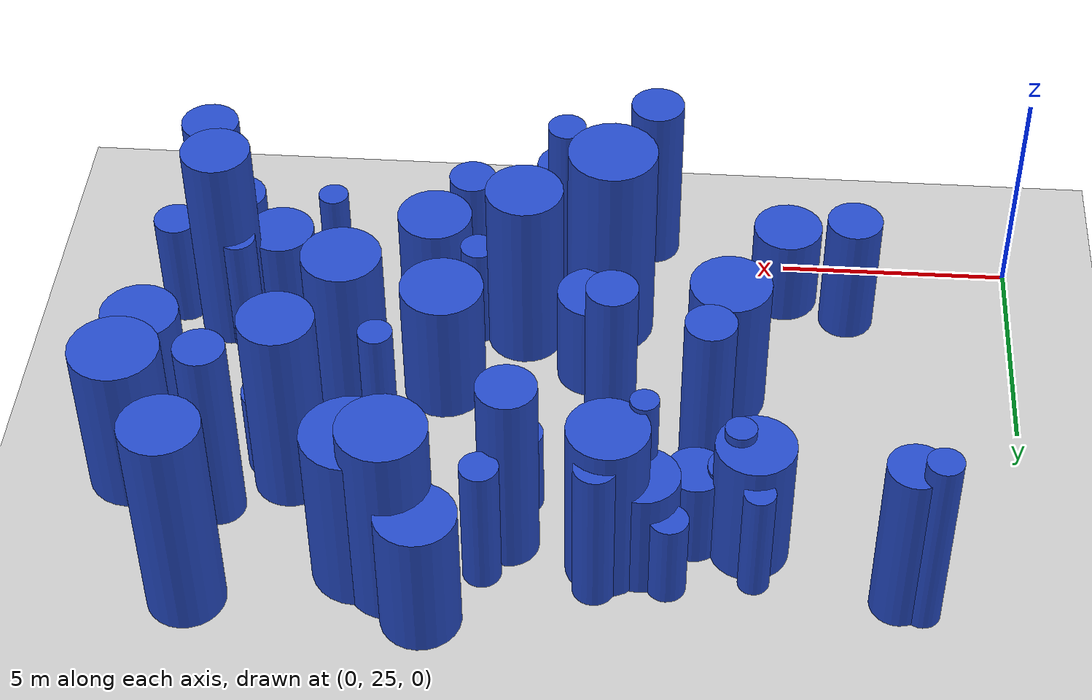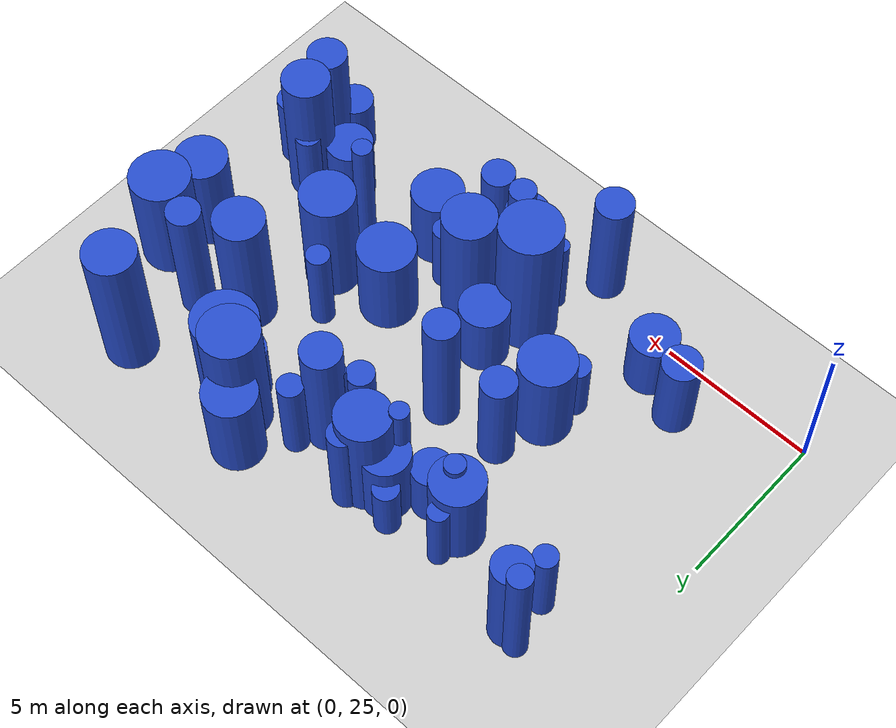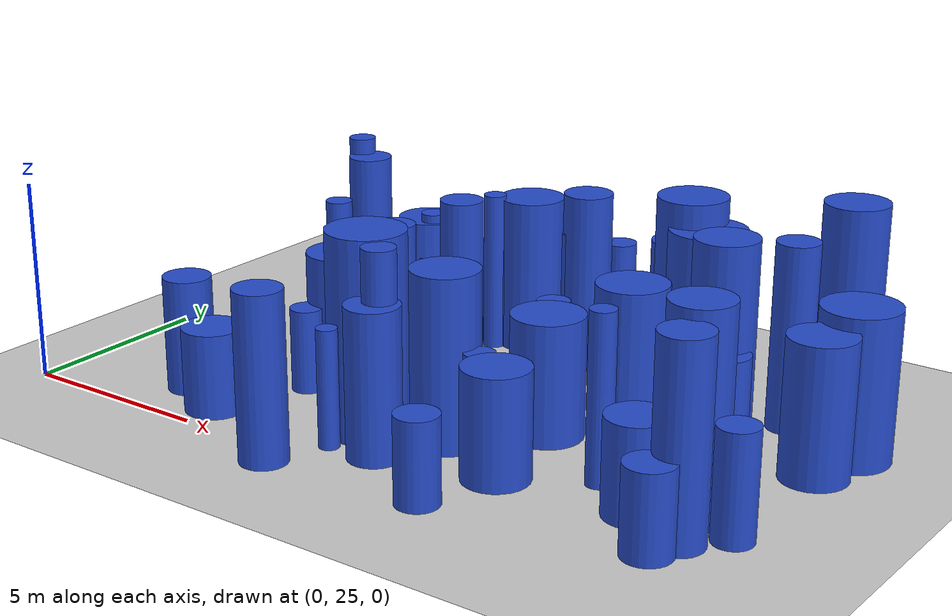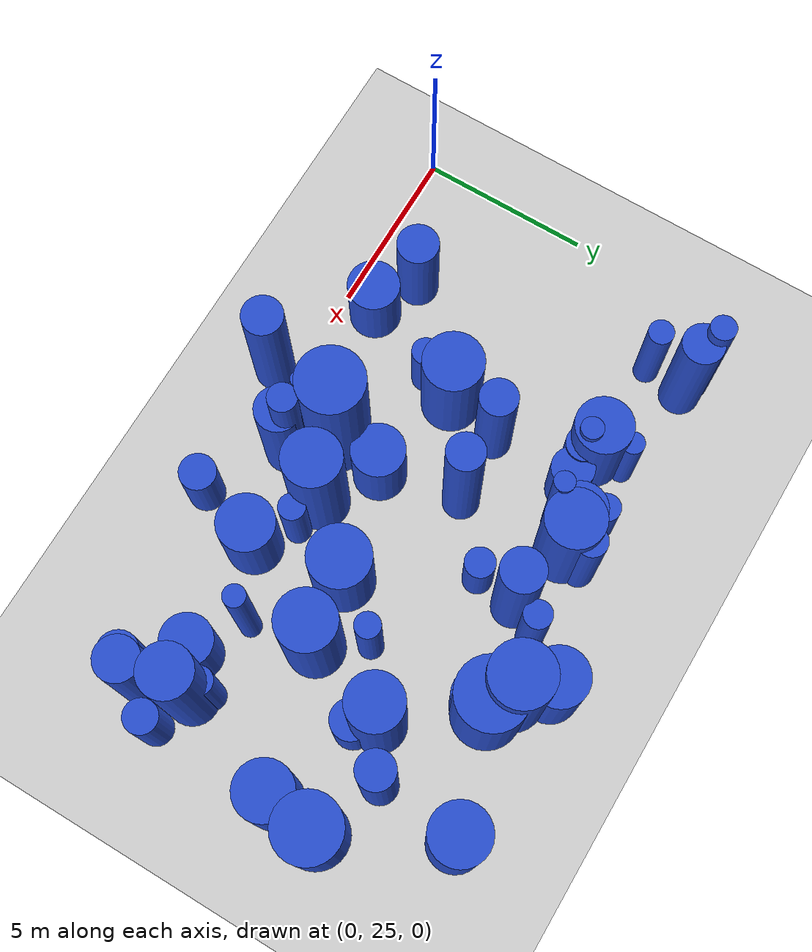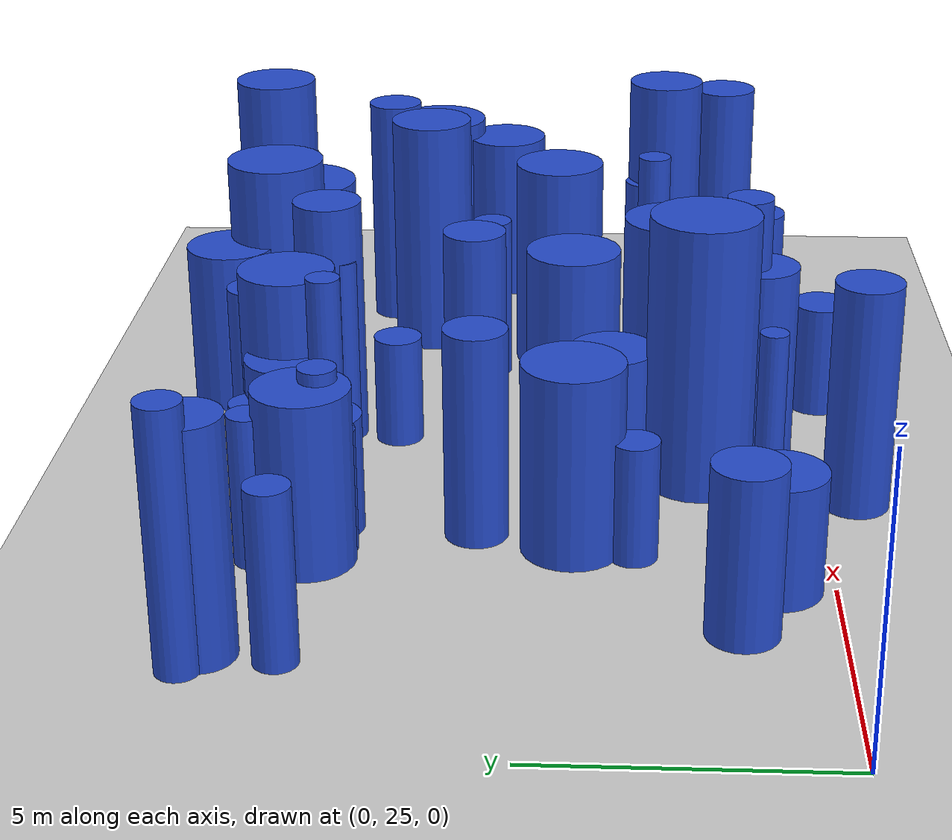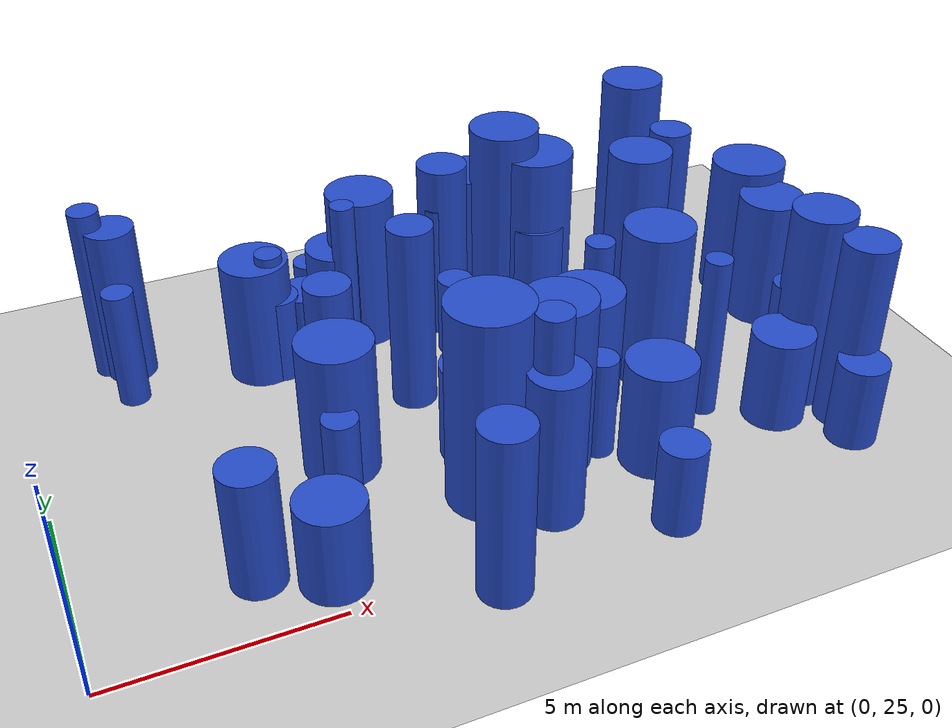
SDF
<sdf version="1.6">
 <world name="default">
  <model name="ground_plane">
   <static>1</static>
   <link name="link">
    <collision name="collision">
     <geometry><plane><normal>0 0 1</normal><size>100 100</size></plane></geometry>
     <surface><friction><ode><mu>100</mu><mu2>50</mu2></ode></friction></surface>
    </collision>
    <visual name="visual">
     <cast_shadows>0</cast_shadows>
     <geometry><plane><normal>0 0 1</normal><size>100 100</size></plane></geometry>
     <material>
      <script><uri>file://media/materials/scripts/gazebo.material</uri><name>Gazebo/Grey</name></script>
     </material>
    </visual>
   </link>
  </model>
  <model name="10">
   <static>0</static>
   <link name="link">
    <inertial>
     <mass>2</mass>
     <inertia>
      <ixx>0.774725</ixx>
      <ixy>0</ixy>
      <ixz>0</ixz>
      <iyy>0.774725</iyy>
      <iyz>0</iyz>
      <izz>0.189763</izz>
     </inertia>
    </inertial>
    <collision name="collision">
     <geometry><cylinder><length>2.01967</length><radius>0.435618</radius></cylinder></geometry>
     <surface><contact><collide_without_contact>1</collide_without_contact></contact></surface>
    </collision>
    <visual name="visual">
     <geometry><cylinder><length>2.01967</length><radius>0.435618</radius></cylinder></geometry>
     <material>
      <script><uri>file://media/materials/scripts/gazebo.material</uri><name>Gazebo/Blue</name></script>
     </material>
    </visual>
    <gravity>0</gravity>
   </link>
   <pose>10.4125 32.5588 1.00983 0 -0 0</pose>
  </model>
  <model name="16">
   <static>0</static>
   <link name="link">
    <inertial>
     <mass>2</mass>
     <inertia>
      <ixx>0.892268</ixx>
      <ixy>0</ixy>
      <ixz>0</ixz>
      <iyy>0.892268</iyy>
      <iyz>0</iyz>
      <izz>0.347311</izz>
     </inertia>
    </inertial>
    <collision name="collision">
     <geometry><cylinder><length>2.07646</length><radius>0.589331</radius></cylinder></geometry>
     <surface><contact><collide_without_contact>1</collide_without_contact></contact></surface>
    </collision>
    <visual name="visual">
     <geometry><cylinder><length>2.07646</length><radius>0.589331</radius></cylinder></geometry>
     <material>
      <script><uri>file://media/materials/scripts/gazebo.material</uri><name>Gazebo/Blue</name></script>
     </material>
    </visual>
    <gravity>0</gravity>
   </link>
   <pose>17.3559 25.5947 1.03823 0 -0 0</pose>
  </model>
  <model name="17">
   <static>0</static>
   <link name="link">
    <inertial>
     <mass>2</mass>
     <inertia><ixx>1.53515</ixx><ixy>0</ixy><ixz>0</ixz><iyy>1.53515</iyy><iyz>0</iyz><izz>0.667989</izz></inertia>
    </inertial>
    <collision name="collision">
     <geometry><cylinder><length>2.68458</length><radius>0.817306</radius></cylinder></geometry>
     <surface><contact><collide_without_contact>1</collide_without_contact></contact></surface>
    </collision>
    <visual name="visual">
     <geometry><cylinder><length>2.68458</length><radius>0.817306</radius></cylinder></geometry>
     <material>
      <script><uri>file://media/materials/scripts/gazebo.material</uri><name>Gazebo/Blue</name></script>
     </material>
    </visual>
    <gravity>0</gravity>
   </link>
   <pose>12.7985 26.728 1.34229 0 -0 0</pose>
  </model>
  <model name="28">
   <static>0</static>
   <link name="link">
    <inertial>
     <mass>2</mass>
     <inertia><ixx>3.02201</ixx><ixy>0</ixy><ixz>0</ixz><iyy>3.02201</iyy><iyz>0</iyz><izz>0.698976</izz></inertia>
    </inertial>
    <collision name="collision">
     <geometry><cylinder><length>4.00439</length><radius>0.836048</radius></cylinder></geometry>
     <surface><contact><collide_without_contact>1</collide_without_contact></contact></surface>
    </collision>
    <visual name="visual">
     <geometry><cylinder><length>4.00439</length><radius>0.836048</radius></cylinder></geometry>
     <material>
      <script><uri>file://media/materials/scripts/gazebo.material</uri><name>Gazebo/Blue</name></script>
     </material>
    </visual>
    <gravity>0</gravity>
   </link>
   <pose>8.59451 34.2473 2.0022 0 -0 0</pose>
  </model>
  <model name="44">
   <static>0</static>
   <link name="link">
    <inertial>
     <mass>2</mass>
     <inertia><ixx>1.89444</ixx><ixy>0</ixy><ixz>0</ixz><iyy>1.89444</iyy><iyz>0</iyz><izz>0.104986</izz></inertia>
    </inertial>
    <collision name="collision">
     <geometry><cylinder><length>3.32441</length><radius>0.324016</radius></cylinder></geometry>
     <surface><contact><collide_without_contact>1</collide_without_contact></contact></surface>
    </collision>
    <visual name="visual">
     <geometry><cylinder><length>3.32441</length><radius>0.324016</radius></cylinder></geometry>
     <material>
      <script><uri>file://media/materials/scripts/gazebo.material</uri><name>Gazebo/Blue</name></script>
     </material>
    </visual>
    <gravity>0</gravity>
   </link>
   <pose>6.01162 33.3985 1.6622 0 -0 0</pose>
  </model>
  <model name="45">
   <static>0</static>
   <link name="link">
    <inertial>
     <mass>2</mass>
     <inertia>
      <ixx>0.842287</ixx>
      <ixy>0</ixy>
      <ixz>0</ixz>
      <iyy>0.842287</iyy>
      <iyz>0</iyz>
      <izz>0.166231</izz>
     </inertia>
    </inertial>
    <collision name="collision">
     <geometry><cylinder><length>2.13425</length><radius>0.407715</radius></cylinder></geometry>
     <surface><contact><collide_without_contact>1</collide_without_contact></contact></surface>
    </collision>
    <visual name="visual">
     <geometry><cylinder><length>2.13425</length><radius>0.407715</radius></cylinder></geometry>
     <material>
      <script><uri>file://media/materials/scripts/gazebo.material</uri><name>Gazebo/Blue</name></script>
     </material>
    </visual>
    <gravity>0</gravity>
   </link>
   <pose>5.99403 28.261 1.06713 0 -0 0</pose>
  </model>
  <model name="46">
   <static>0</static>
   <link name="link">
    <inertial>
     <mass>2</mass>
     <inertia><ixx>3.66514</ixx><ixy>0</ixy><ixz>0</ixz><iyy>3.66514</iyy><iyz>0</iyz><izz>0.277177</izz></inertia>
    </inertial>
    <collision name="collision">
     <geometry><cylinder><length>4.59992</length><radius>0.526476</radius></cylinder></geometry>
     <surface><contact><collide_without_contact>1</collide_without_contact></contact></surface>
    </collision>
    <visual name="visual">
     <geometry><cylinder><length>4.59992</length><radius>0.526476</radius></cylinder></geometry>
     <material>
      <script><uri>file://media/materials/scripts/gazebo.material</uri><name>Gazebo/Blue</name></script>
     </material>
    </visual>
    <gravity>0</gravity>
   </link>
   <pose>16.6724 33.1642 2.29996 0 -0 0</pose>
  </model>
  <model name="59">
   <static>0</static>
   <link name="link">
    <inertial>
     <mass>2</mass>
     <inertia><ixx>3.92698</ixx><ixy>0</ixy><ixz>0</ixz><iyy>3.92698</iyy><iyz>0</iyz><izz>0.61693</izz></inertia>
    </inertial>
    <collision name="collision">
     <geometry><cylinder><length>4.65952</length><radius>0.785449</radius></cylinder></geometry>
     <surface><contact><collide_without_contact>1</collide_without_contact></contact></surface>
    </collision>
    <visual name="visual">
     <geometry><cylinder><length>4.65952</length><radius>0.785449</radius></cylinder></geometry>
     <material>
      <script><uri>file://media/materials/scripts/gazebo.material</uri><name>Gazebo/Blue</name></script>
     </material>
    </visual>
    <gravity>0</gravity>
   </link>
   <pose>15.2975 32.3059 2.32976 0 -0 0</pose>
  </model>
  <model name="60">
   <static>0</static>
   <link name="link">
    <inertial>
     <mass>2</mass>
     <inertia><ixx>1.93141</ixx><ixy>0</ixy><ixz>0</ixz><iyy>1.93141</iyy><iyz>0</iyz><izz>0.684843</izz></inertia>
    </inertial>
    <collision name="collision">
     <geometry><cylinder><length>3.08771</length><radius>0.827552</radius></cylinder></geometry>
     <surface><contact><collide_without_contact>1</collide_without_contact></contact></surface>
    </collision>
    <visual name="visual">
     <geometry><cylinder><length>3.08771</length><radius>0.827552</radius></cylinder></geometry>
     <material>
      <script><uri>file://media/materials/scripts/gazebo.material</uri><name>Gazebo/Blue</name></script>
     </material>
    </visual>
    <gravity>0</gravity>
   </link>
   <pose>12.1888 35.8743 1.54386 0 -0 0</pose>
  </model>
  <model name="84">
   <static>0</static>
   <link name="link">
    <inertial>
     <mass>2</mass>
     <inertia><ixx>2.71071</ixx><ixy>0</ixy><ixz>0</ixz><iyy>2.71071</iyy><iyz>0</iyz><izz>0.884749</izz></inertia>
    </inertial>
    <collision name="collision">
     <geometry><cylinder><length>3.68917</length><radius>0.940611</radius></cylinder></geometry>
     <surface><contact><collide_without_contact>1</collide_without_contact></contact></surface>
    </collision>
    <visual name="visual">
     <geometry><cylinder><length>3.68917</length><radius>0.940611</radius></cylinder></geometry>
     <material>
      <script><uri>file://media/materials/scripts/gazebo.material</uri><name>Gazebo/Blue</name></script>
     </material>
    </visual>
    <gravity>0</gravity>
   </link>
   <pose>18.6467 32.3799 1.84459 0 -0 0</pose>
  </model>
  <model name="85">
   <static>0</static>
   <link name="link">
    <inertial>
     <mass>2</mass>
     <inertia><ixx>1.16177</ixx><ixy>0</ixy><ixz>0</ixz><iyy>1.16177</iyy><iyz>0</iyz><izz>0.543841</izz></inertia>
    </inertial>
    <collision name="collision">
     <geometry><cylinder><length>2.31065</length><radius>0.737455</radius></cylinder></geometry>
     <surface><contact><collide_without_contact>1</collide_without_contact></contact></surface>
    </collision>
    <visual name="visual">
     <geometry><cylinder><length>2.31065</length><radius>0.737455</radius></cylinder></geometry>
     <material>
      <script><uri>file://media/materials/scripts/gazebo.material</uri><name>Gazebo/Blue</name></script>
     </material>
    </visual>
    <gravity>0</gravity>
   </link>
   <pose>16.1913 27.0229 1.15532 0 -0 0</pose>
  </model>
  <model name="88">
   <static>0</static>
   <link name="link">
    <inertial>
     <mass>2</mass>
     <inertia><ixx>2.86237</ixx><ixy>0</ixy><ixz>0</ixz><iyy>2.86237</iyy><iyz>0</iyz><izz>0.098513</izz></inertia>
    </inertial>
    <collision name="collision">
     <geometry><cylinder><length>4.10837</length><radius>0.313868</radius></cylinder></geometry>
     <surface><contact><collide_without_contact>1</collide_without_contact></contact></surface>
    </collision>
    <visual name="visual">
     <geometry><cylinder><length>4.10837</length><radius>0.313868</radius></cylinder></geometry>
     <material>
      <script><uri>file://media/materials/scripts/gazebo.material</uri><name>Gazebo/Blue</name></script>
     </material>
    </visual>
    <gravity>0</gravity>
   </link>
   <pose>14.7797 27.8503 2.05418 0 -0 0</pose>
  </model>
  <model name="89">
   <static>0</static>
   <link name="link">
    <inertial>
     <mass>2</mass>
     <inertia><ixx>4.46549</ixx><ixy>0</ixy><ixz>0</ixz><iyy>4.46549</iyy><iyz>0</iyz><izz>0.649868</izz></inertia>
    </inertial>
    <collision name="collision">
     <geometry><cylinder><length>4.98431</length><radius>0.806144</radius></cylinder></geometry>
     <surface><contact><collide_without_contact>1</collide_without_contact></contact></surface>
    </collision>
    <visual name="visual">
     <geometry><cylinder><length>4.98431</length><radius>0.806144</radius></cylinder></geometry>
     <material>
      <script><uri>file://media/materials/scripts/gazebo.material</uri><name>Gazebo/Blue</name></script>
     </material>
    </visual>
    <gravity>0</gravity>
   </link>
   <pose>16.9416 35.66 2.49215 0 -0 0</pose>
  </model>
  <model name="111">
   <static>0</static>
   <link name="link">
    <inertial>
     <mass>2</mass>
     <inertia><ixx>1.46807</ixx><ixy>0</ixy><ixz>0</ixz><iyy>1.46807</iyy><iyz>0</iyz><izz>0.571442</izz></inertia>
    </inertial>
    <collision name="collision">
     <geometry><cylinder><length>2.66347</length><radius>0.755938</radius></cylinder></geometry>
     <surface><contact><collide_without_contact>1</collide_without_contact></contact></surface>
    </collision>
    <visual name="visual">
     <geometry><cylinder><length>2.66347</length><radius>0.755938</radius></cylinder></geometry>
     <material>
      <script><uri>file://media/materials/scripts/gazebo.material</uri><name>Gazebo/Blue</name></script>
     </material>
    </visual>
    <gravity>0</gravity>
   </link>
   <pose>7.89645 34.1686 1.33174 0 -0 0</pose>
  </model>
  <model name="114">
   <static>0</static>
   <link name="link">
    <inertial>
     <mass>2</mass>
     <inertia><ixx>3.88257</ixx><ixy>0</ixy><ixz>0</ixz><iyy>3.88257</iyy><iyz>0</iyz><izz>0.378975</izz></inertia>
    </inertial>
    <collision name="collision">
     <geometry><cylinder><length>4.70728</length><radius>0.61561</radius></cylinder></geometry>
     <surface><contact><collide_without_contact>1</collide_without_contact></contact></surface>
    </collision>
    <visual name="visual">
     <geometry><cylinder><length>4.70728</length><radius>0.61561</radius></cylinder></geometry>
     <material>
      <script><uri>file://media/materials/scripts/gazebo.material</uri><name>Gazebo/Blue</name></script>
     </material>
    </visual>
    <gravity>0</gravity>
   </link>
   <pose>17.6251 26.3576 2.35364 0 -0 0</pose>
  </model>
  <model name="115">
   <static>0</static>
   <link name="link">
    <inertial>
     <mass>2</mass>
     <inertia><ixx>3.6437</ixx><ixy>0</ixy><ixz>0</ixz><iyy>3.6437</iyy><iyz>0</iyz><izz>0.381318</izz></inertia>
    </inertial>
    <collision name="collision">
     <geometry><cylinder><length>4.55173</length><radius>0.61751</radius></cylinder></geometry>
     <surface><contact><collide_without_contact>1</collide_without_contact></contact></surface>
    </collision>
    <visual name="visual">
     <geometry><cylinder><length>4.55173</length><radius>0.61751</radius></cylinder></geometry>
     <material>
      <script><uri>file://media/materials/scripts/gazebo.material</uri><name>Gazebo/Blue</name></script>
     </material>
    </visual>
    <gravity>0</gravity>
   </link>
   <pose>10.5925 33.7909 2.27586 0 -0 0</pose>
  </model>
  <model name="119">
   <static>0</static>
   <link name="link">
    <inertial>
     <mass>2</mass>
     <inertia><ixx>4.1708</ixx><ixy>0</ixy><ixz>0</ixz><iyy>4.1708</iyy><iyz>0</iyz><izz>0.167894</izz></inertia>
    </inertial>
    <collision name="collision">
     <geometry><cylinder><length>4.95188</length><radius>0.409748</radius></cylinder></geometry>
     <surface><contact><collide_without_contact>1</collide_without_contact></contact></surface>
    </collision>
    <visual name="visual">
     <geometry><cylinder><length>4.95188</length><radius>0.409748</radius></cylinder></geometry>
     <material>
      <script><uri>file://media/materials/scripts/gazebo.material</uri><name>Gazebo/Blue</name></script>
     </material>
    </visual>
    <gravity>0</gravity>
   </link>
   <pose>9.91773 26.2895 2.47594 0 -0 0</pose>
  </model>
  <model name="132">
   <static>0</static>
   <link name="link">
    <inertial>
     <mass>2</mass>
     <inertia><ixx>1.61534</ixx><ixy>0</ixy><ixz>0</ixz><iyy>1.61534</iyy><iyz>0</iyz><izz>0.365131</izz></inertia>
    </inertial>
    <collision name="collision">
     <geometry><cylinder><length>2.93201</length><radius>0.604261</radius></cylinder></geometry>
     <surface><contact><collide_without_contact>1</collide_without_contact></contact></surface>
    </collision>
    <visual name="visual">
     <geometry><cylinder><length>2.93201</length><radius>0.604261</radius></cylinder></geometry>
     <material>
      <script><uri>file://media/materials/scripts/gazebo.material</uri><name>Gazebo/Blue</name></script>
     </material>
    </visual>
    <gravity>0</gravity>
   </link>
   <pose>3.6225 26.5939 1.466 0 -0 0</pose>
  </model>
  <model name="163">
   <static>0</static>
   <link name="link">
    <inertial>
     <mass>2</mass>
     <inertia>
      <ixx>0.925012</ixx>
      <ixy>0</ixy>
      <ixz>0</ixz>
      <iyy>0.925012</iyy>
      <iyz>0</iyz>
      <izz>0.377759</izz>
     </inertia>
    </inertial>
    <collision name="collision">
     <geometry><cylinder><length>2.10162</length><radius>0.614621</radius></cylinder></geometry>
     <surface><contact><collide_without_contact>1</collide_without_contact></contact></surface>
    </collision>
    <visual name="visual">
     <geometry><cylinder><length>2.10162</length><radius>0.614621</radius></cylinder></geometry>
     <material>
      <script><uri>file://media/materials/scripts/gazebo.material</uri><name>Gazebo/Blue</name></script>
     </material>
    </visual>
    <gravity>0</gravity>
   </link>
   <pose>6.85279 33.4181 1.05081 0 -0 0</pose>
  </model>
  <model name="164">
   <static>0</static>
   <link name="link">
    <inertial>
     <mass>2</mass>
     <inertia>
      <ixx>1.45372</ixx>
      <ixy>0</ixy>
      <ixz>0</ixz>
      <iyy>1.45372</iyy>
      <iyz>0</iyz>
      <izz>0.0647348</izz>
     </inertia>
    </inertial>
    <collision name="collision">
     <geometry><cylinder><length>2.92029</length><radius>0.25443</radius></cylinder></geometry>
     <surface><contact><collide_without_contact>1</collide_without_contact></contact></surface>
    </collision>
    <visual name="visual">
     <geometry><cylinder><length>2.92029</length><radius>0.25443</radius></cylinder></geometry>
     <material>
      <script><uri>file://media/materials/scripts/gazebo.material</uri><name>Gazebo/Blue</name></script>
     </material>
    </visual>
    <gravity>0</gravity>
   </link>
   <pose>8.71199 25.8672 1.46014 0 -0 0</pose>
  </model>
  <model name="186">
   <static>0</static>
   <link name="link">
    <inertial>
     <mass>2</mass>
     <inertia><ixx>1.45752</ixx><ixy>0</ixy><ixz>0</ixz><iyy>1.45752</iyy><iyz>0</iyz><izz>0.163169</izz></inertia>
    </inertial>
    <collision name="collision">
     <geometry><cylinder><length>2.87326</length><radius>0.403942</radius></cylinder></geometry>
     <surface><contact><collide_without_contact>1</collide_without_contact></contact></surface>
    </collision>
    <visual name="visual">
     <geometry><cylinder><length>2.87326</length><radius>0.403942</radius></cylinder></geometry>
     <material>
      <script><uri>file://media/materials/scripts/gazebo.material</uri><name>Gazebo/Blue</name></script>
     </material>
    </visual>
    <gravity>0</gravity>
   </link>
   <pose>16.9574 27.9873 1.43663 0 -0 0</pose>
  </model>
  <model name="198">
   <static>0</static>
   <link name="link">
    <inertial>
     <mass>2</mass>
     <inertia><ixx>1.55105</ixx><ixy>0</ixy><ixz>0</ixz><iyy>1.55105</iyy><iyz>0</iyz><izz>0.133305</izz></inertia>
    </inertial>
    <collision name="collision">
     <geometry><cylinder><length>2.98436</length><radius>0.36511</radius></cylinder></geometry>
     <surface><contact><collide_without_contact>1</collide_without_contact></contact></surface>
    </collision>
    <visual name="visual">
     <geometry><cylinder><length>2.98436</length><radius>0.36511</radius></cylinder></geometry>
     <material>
      <script><uri>file://media/materials/scripts/gazebo.material</uri><name>Gazebo/Blue</name></script>
     </material>
    </visual>
    <gravity>0</gravity>
   </link>
   <pose>2.51742 33.665 1.49218 0 -0 0</pose>
  </model>
  <model name="209">
   <static>0</static>
   <link name="link">
    <inertial>
     <mass>2</mass>
     <inertia>
      <ixx>0.868833</ixx>
      <ixy>0</ixy>
      <ixz>0</ixz>
      <iyy>0.868833</iyy>
      <iyz>0</iyz>
      <izz>0.327499</izz>
     </inertia>
    </inertial>
    <collision name="collision">
     <geometry><cylinder><length>2.05682</length><radius>0.572276</radius></cylinder></geometry>
     <surface><contact><collide_without_contact>1</collide_without_contact></contact></surface>
    </collision>
    <visual name="visual">
     <geometry><cylinder><length>2.05682</length><radius>0.572276</radius></cylinder></geometry>
     <material>
      <script><uri>file://media/materials/scripts/gazebo.material</uri><name>Gazebo/Blue</name></script>
     </material>
    </visual>
    <gravity>0</gravity>
   </link>
   <pose>15.7369 31.7663 1.02841 0 -0 0</pose>
  </model>
  <model name="213">
   <static>0</static>
   <link name="link">
    <inertial>
     <mass>2</mass>
     <inertia><ixx>3.3631</ixx><ixy>0</ixy><ixz>0</ixz><iyy>3.3631</iyy><iyz>0</iyz><izz>0.133326</izz></inertia>
    </inertial>
    <collision name="collision">
     <geometry><cylinder><length>4.44731</length><radius>0.365139</radius></cylinder></geometry>
     <surface><contact><collide_without_contact>1</collide_without_contact></contact></surface>
    </collision>
    <visual name="visual">
     <geometry><cylinder><length>4.44731</length><radius>0.365139</radius></cylinder></geometry>
     <material>
      <script><uri>file://media/materials/scripts/gazebo.material</uri><name>Gazebo/Blue</name></script>
     </material>
    </visual>
    <gravity>0</gravity>
   </link>
   <pose>2.21908 35.095 2.22366 0 -0 0</pose>
  </model>
  <model name="220">
   <static>0</static>
   <link name="link">
    <inertial>
     <mass>2</mass>
     <inertia><ixx>1.72789</ixx><ixy>0</ixy><ixz>0</ixz><iyy>1.72789</iyy><iyz>0</iyz><izz>0.15882</izz></inertia>
    </inertial>
    <collision name="collision">
     <geometry><cylinder><length>3.14497</length><radius>0.398523</radius></cylinder></geometry>
     <surface><contact><collide_without_contact>1</collide_without_contact></contact></surface>
    </collision>
    <visual name="visual">
     <geometry><cylinder><length>3.14497</length><radius>0.398523</radius></cylinder></geometry>
     <material>
      <script><uri>file://media/materials/scripts/gazebo.material</uri><name>Gazebo/Blue</name></script>
     </material>
    </visual>
    <gravity>0</gravity>
   </link>
   <pose>11.0817 34.6108 1.57249 0 -0 0</pose>
  </model>
  <model name="224">
   <static>0</static>
   <link name="link">
    <inertial>
     <mass>2</mass>
     <inertia>
      <ixx>0.99293</ixx>
      <ixy>0</ixy>
      <ixz>0</ixz>
      <iyy>0.99293</iyy>
      <iyz>0</iyz>
      <izz>0.0959306</izz>
     </inertia>
    </inertial>
    <collision name="collision">
     <geometry><cylinder><length>2.38113</length><radius>0.309727</radius></cylinder></geometry>
     <surface><contact><collide_without_contact>1</collide_without_contact></contact></surface>
    </collision>
    <visual name="visual">
     <geometry><cylinder><length>2.38113</length><radius>0.309727</radius></cylinder></geometry>
     <material>
      <script><uri>file://media/materials/scripts/gazebo.material</uri><name>Gazebo/Blue</name></script>
     </material>
    </visual>
    <gravity>0</gravity>
   </link>
   <pose>8.02064 24.4742 1.19057 0 -0 0</pose>
  </model>
  <model name="232">
   <static>0</static>
   <link name="link">
    <inertial>
     <mass>2</mass>
     <inertia><ixx>1.25471</ixx><ixy>0</ixy><ixz>0</ixz><iyy>1.25471</iyy><iyz>0</iyz><izz>0.231421</izz></inertia>
    </inertial>
    <collision name="collision">
     <geometry><cylinder><length>2.61419</length><radius>0.481063</radius></cylinder></geometry>
     <surface><contact><collide_without_contact>1</collide_without_contact></contact></surface>
    </collision>
    <visual name="visual">
     <geometry><cylinder><length>2.61419</length><radius>0.481063</radius></cylinder></geometry>
     <material>
      <script><uri>file://media/materials/scripts/gazebo.material</uri><name>Gazebo/Blue</name></script>
     </material>
    </visual>
    <gravity>0</gravity>
   </link>
   <pose>18.4605 27.1727 1.3071 0 -0 0</pose>
  </model>
  <model name="241">
   <static>0</static>
   <link name="link">
    <inertial>
     <mass>2</mass>
     <inertia><ixx>2.50437</ixx><ixy>0</ixy><ixz>0</ixz><iyy>2.50437</iyy><iyz>0</iyz><izz>0.295767</izz></inertia>
    </inertial>
    <collision name="collision">
     <geometry><cylinder><length>3.76017</length><radius>0.543845</radius></cylinder></geometry>
     <surface><contact><collide_without_contact>1</collide_without_contact></contact></surface>
    </collision>
    <visual name="visual">
     <geometry><cylinder><length>3.76017</length><radius>0.543845</radius></cylinder></geometry>
     <material>
      <script><uri>file://media/materials/scripts/gazebo.material</uri><name>Gazebo/Blue</name></script>
     </material>
    </visual>
    <gravity>0</gravity>
   </link>
   <pose>6.67994 30.8942 1.88009 0 -0 0</pose>
  </model>
  <model name="245">
   <static>0</static>
   <link name="link">
    <inertial>
     <mass>2</mass>
     <inertia><ixx>3.09479</ixx><ixy>0</ixy><ixz>0</ixz><iyy>3.09479</iyy><iyz>0</iyz><izz>0.995737</izz></inertia>
    </inertial>
    <collision name="collision">
     <geometry><cylinder><length>3.94735</length><radius>0.997866</radius></cylinder></geometry>
     <surface><contact><collide_without_contact>1</collide_without_contact></contact></surface>
    </collision>
    <visual name="visual">
     <geometry><cylinder><length>3.94735</length><radius>0.997866</radius></cylinder></geometry>
     <material>
      <script><uri>file://media/materials/scripts/gazebo.material</uri><name>Gazebo/Blue</name></script>
     </material>
    </visual>
    <gravity>0</gravity>
   </link>
   <pose>13.551 34.6415 1.97367 0 -0 0</pose>
  </model>
  <model name="253">
   <static>0</static>
   <link name="link">
    <inertial>
     <mass>2</mass>
     <inertia><ixx>1.94277</ixx><ixy>0</ixy><ixz>0</ixz><iyy>1.94277</iyy><iyz>0</iyz><izz>0.672323</izz></inertia>
    </inertial>
    <collision name="collision">
     <geometry><cylinder><length>3.10478</length><radius>0.819953</radius></cylinder></geometry>
     <surface><contact><collide_without_contact>1</collide_without_contact></contact></surface>
    </collision>
    <visual name="visual">
     <geometry><cylinder><length>3.10478</length><radius>0.819953</radius></cylinder></geometry>
     <material>
      <script><uri>file://media/materials/scripts/gazebo.material</uri><name>Gazebo/Blue</name></script>
     </material>
    </visual>
    <gravity>0</gravity>
   </link>
   <pose>5.70056 33.6282 1.55239 0 -0 0</pose>
  </model>
  <model name="293">
   <static>0</static>
   <link name="link">
    <inertial>
     <mass>2</mass>
     <inertia><ixx>2.23456</ixx><ixy>0</ixy><ixz>0</ixz><iyy>2.23456</iyy><iyz>0</iyz><izz>0.19613</izz></inertia>
    </inertial>
    <collision name="collision">
     <geometry><cylinder><length>3.58036</length><radius>0.442865</radius></cylinder></geometry>
     <surface><contact><collide_without_contact>1</collide_without_contact></contact></surface>
    </collision>
    <visual name="visual">
     <geometry><cylinder><length>3.58036</length><radius>0.442865</radius></cylinder></geometry>
     <material>
      <script><uri>file://media/materials/scripts/gazebo.material</uri><name>Gazebo/Blue</name></script>
     </material>
    </visual>
    <gravity>0</gravity>
   </link>
   <pose>8.79822 34.8797 1.79018 0 -0 0</pose>
  </model>
  <model name="295">
   <static>0</static>
   <link name="link">
    <inertial>
     <mass>2</mass>
     <inertia><ixx>3.90292</ixx><ixy>0</ixy><ixz>0</ixz><iyy>3.90292</iyy><iyz>0</iyz><izz>0.818913</izz></inertia>
    </inertial>
    <collision name="collision">
     <geometry><cylinder><length>4.57829</length><radius>0.904938</radius></cylinder></geometry>
     <surface><contact><collide_without_contact>1</collide_without_contact></contact></surface>
    </collision>
    <visual name="visual">
     <geometry><cylinder><length>4.57829</length><radius>0.904938</radius></cylinder></geometry>
     <material>
      <script><uri>file://media/materials/scripts/gazebo.material</uri><name>Gazebo/Blue</name></script>
     </material>
    </visual>
    <gravity>0</gravity>
   </link>
   <pose>12.8573 35.0631 2.28915 0 -0 0</pose>
  </model>
  <model name="304">
   <static>0</static>
   <link name="link">
    <inertial>
     <mass>2</mass>
     <inertia><ixx>1.92398</ixx><ixy>0</ixy><ixz>0</ixz><iyy>1.92398</iyy><iyz>0</iyz><izz>0.799679</izz></inertia>
    </inertial>
    <collision name="collision">
     <geometry><cylinder><length>3.02404</length><radius>0.894248</radius></cylinder></geometry>
     <surface><contact><collide_without_contact>1</collide_without_contact></contact></surface>
    </collision>
    <visual name="visual">
     <geometry><cylinder><length>3.02404</length><radius>0.894248</radius></cylinder></geometry>
     <material>
      <script><uri>file://media/materials/scripts/gazebo.material</uri><name>Gazebo/Blue</name></script>
     </material>
    </visual>
    <gravity>0</gravity>
   </link>
   <pose>12.363 29.3953 1.51202 0 -0 0</pose>
  </model>
  <model name="311">
   <static>0</static>
   <link name="link">
    <inertial>
     <mass>2</mass>
     <inertia><ixx>2.86992</ixx><ixy>0</ixy><ixz>0</ixz><iyy>2.86992</iyy><iyz>0</iyz><izz>0.350057</izz></inertia>
    </inertial>
    <collision name="collision">
     <geometry><cylinder><length>4.02111</length><radius>0.591656</radius></cylinder></geometry>
     <surface><contact><collide_without_contact>1</collide_without_contact></contact></surface>
    </collision>
    <visual name="visual">
     <geometry><cylinder><length>4.02111</length><radius>0.591656</radius></cylinder></geometry>
     <material>
      <script><uri>file://media/materials/scripts/gazebo.material</uri><name>Gazebo/Blue</name></script>
     </material>
    </visual>
    <gravity>0</gravity>
   </link>
   <pose>2.69242 34.8475 2.01056 0 -0 0</pose>
  </model>
  <model name="323">
   <static>0</static>
   <link name="link">
    <inertial>
     <mass>2</mass>
     <inertia>
      <ixx>3.12147</ixx>
      <ixy>0</ixy>
      <ixz>0</ixz>
      <iyy>3.12147</iyy>
      <iyz>0</iyz>
      <izz>0.0769715</izz>
     </inertia>
    </inertial>
    <collision name="collision">
     <geometry><cylinder><length>4.30092</length><radius>0.277437</radius></cylinder></geometry>
     <surface><contact><collide_without_contact>1</collide_without_contact></contact></surface>
    </collision>
    <visual name="visual">
     <geometry><cylinder><length>4.30092</length><radius>0.277437</radius></cylinder></geometry>
     <material>
      <script><uri>file://media/materials/scripts/gazebo.material</uri><name>Gazebo/Blue</name></script>
     </material>
    </visual>
    <gravity>0</gravity>
   </link>
   <pose>12.4292 34.6432 2.15046 0 -0 0</pose>
  </model>
  <model name="328">
   <static>0</static>
   <link name="link">
    <inertial>
     <mass>2</mass>
     <inertia><ixx>2.23108</ixx><ixy>0</ixy><ixz>0</ixz><iyy>2.23108</iyy><iyz>0</iyz><izz>0.666087</izz></inertia>
    </inertial>
    <collision name="collision">
     <geometry><cylinder><length>3.37464</length><radius>0.816142</radius></cylinder></geometry>
     <surface><contact><collide_without_contact>1</collide_without_contact></contact></surface>
    </collision>
    <visual name="visual">
     <geometry><cylinder><length>3.37464</length><radius>0.816142</radius></cylinder></geometry>
     <material>
      <script><uri>file://media/materials/scripts/gazebo.material</uri><name>Gazebo/Blue</name></script>
     </material>
    </visual>
    <gravity>0</gravity>
   </link>
   <pose>18.4338 30.9563 1.68732 0 -0 0</pose>
  </model>
  <model name="363">
   <static>0</static>
   <link name="link">
    <inertial>
     <mass>2</mass>
     <inertia><ixx>3.14608</ixx><ixy>0</ixy><ixz>0</ixz><iyy>3.14608</iyy><iyz>0</iyz><izz>0.719599</izz></inertia>
    </inertial>
    <collision name="collision">
     <geometry><cylinder><length>4.08873</length><radius>0.848292</radius></cylinder></geometry>
     <surface><contact><collide_without_contact>1</collide_without_contact></contact></surface>
    </collision>
    <visual name="visual">
     <geometry><cylinder><length>4.08873</length><radius>0.848292</radius></cylinder></geometry>
     <material>
      <script><uri>file://media/materials/scripts/gazebo.material</uri><name>Gazebo/Blue</name></script>
     </material>
    </visual>
    <gravity>0</gravity>
   </link>
   <pose>14.3779 29.7137 2.04436 0 -0 0</pose>
  </model>
  <model name="369">
   <static>0</static>
   <link name="link">
    <inertial>
     <mass>2</mass>
     <inertia>
      <ixx>2.86665</ixx>
      <ixy>0</ixy>
      <ixz>0</ixz>
      <iyy>2.86665</iyy>
      <iyz>0</iyz>
      <izz>0.0865546</izz>
     </inertia>
    </inertial>
    <collision name="collision">
     <geometry><cylinder><length>4.11585</length><radius>0.294202</radius></cylinder></geometry>
     <surface><contact><collide_without_contact>1</collide_without_contact></contact></surface>
    </collision>
    <visual name="visual">
     <geometry><cylinder><length>4.11585</length><radius>0.294202</radius></cylinder></geometry>
     <material>
      <script><uri>file://media/materials/scripts/gazebo.material</uri><name>Gazebo/Blue</name></script>
     </material>
    </visual>
    <gravity>0</gravity>
   </link>
   <pose>7.92364 33.5296 2.05793 0 -0 0</pose>
  </model>
  <model name="378">
   <static>0</static>
   <link name="link">
    <inertial>
     <mass>2</mass>
     <inertia>
      <ixx>0.884263</ixx>
      <ixy>0</ixy>
      <ixz>0</ixz>
      <iyy>0.884263</iyy>
      <iyz>0</iyz>
      <izz>0.279062</izz>
     </inertia>
    </inertial>
    <collision name="collision">
     <geometry><cylinder><length>2.11386</length><radius>0.528263</radius></cylinder></geometry>
     <surface><contact><collide_without_contact>1</collide_without_contact></contact></surface>
    </collision>
    <visual name="visual">
     <geometry><cylinder><length>2.11386</length><radius>0.528263</radius></cylinder></geometry>
     <material>
      <script><uri>file://media/materials/scripts/gazebo.material</uri><name>Gazebo/Blue</name></script>
     </material>
    </visual>
    <gravity>0</gravity>
   </link>
   <pose>12.1719 24.7098 1.05693 0 -0 0</pose>
  </model>
  <model name="397">
   <static>0</static>
   <link name="link">
    <inertial>
     <mass>2</mass>
     <inertia>
      <ixx>2.10816</ixx>
      <ixy>0</ixy>
      <ixz>0</ixz>
      <iyy>2.10816</iyy>
      <iyz>0</iyz>
      <izz>0.0886619</izz>
     </inertia>
    </inertial>
    <collision name="collision">
     <geometry><cylinder><length>3.51895</length><radius>0.297761</radius></cylinder></geometry>
     <surface><contact><collide_without_contact>1</collide_without_contact></contact></surface>
    </collision>
    <visual name="visual">
     <geometry><cylinder><length>3.51895</length><radius>0.297761</radius></cylinder></geometry>
     <material>
      <script><uri>file://media/materials/scripts/gazebo.material</uri><name>Gazebo/Blue</name></script>
     </material>
    </visual>
    <gravity>0</gravity>
   </link>
   <pose>10.3334 33.5494 1.75947 0 -0 0</pose>
  </model>
  <model name="403">
   <static>0</static>
   <link name="link">
    <inertial>
     <mass>2</mass>
     <inertia><ixx>4.59726</ixx><ixy>0</ixy><ixz>0</ixz><iyy>4.59726</iyy><iyz>0</iyz><izz>0.922109</izz></inertia>
    </inertial>
    <collision name="collision">
     <geometry><cylinder><length>4.98169</length><radius>0.960265</radius></cylinder></geometry>
     <surface><contact><collide_without_contact>1</collide_without_contact></contact></surface>
    </collision>
    <visual name="visual">
     <geometry><cylinder><length>4.98169</length><radius>0.960265</radius></cylinder></geometry>
     <material>
      <script><uri>file://media/materials/scripts/gazebo.material</uri><name>Gazebo/Blue</name></script>
     </material>
    </visual>
    <gravity>0</gravity>
   </link>
   <pose>8.89273 27.0991 2.49084 0 -0 0</pose>
  </model>
  <model name="411">
   <static>0</static>
   <link name="link">
    <inertial>
     <mass>2</mass>
     <inertia><ixx>4.35155</ixx><ixy>0</ixy><ixz>0</ixz><iyy>4.35155</iyy><iyz>0</iyz><izz>0.550593</izz></inertia>
    </inertial>
    <collision name="collision">
     <geometry><cylinder><length>4.94546</length><radius>0.742019</radius></cylinder></geometry>
     <surface><contact><collide_without_contact>1</collide_without_contact></contact></surface>
    </collision>
    <visual name="visual">
     <geometry><cylinder><length>4.94546</length><radius>0.742019</radius></cylinder></geometry>
     <material>
      <script><uri>file://media/materials/scripts/gazebo.material</uri><name>Gazebo/Blue</name></script>
     </material>
    </visual>
    <gravity>0</gravity>
   </link>
   <pose>17.2838 27.5865 2.47273 0 -0 0</pose>
  </model>
  <model name="420">
   <static>0</static>
   <link name="link">
    <inertial>
     <mass>2</mass>
     <inertia><ixx>3.82804</ixx><ixy>0</ixy><ixz>0</ixz><iyy>3.82804</iyy><iyz>0</iyz><izz>0.287428</izz></inertia>
    </inertial>
    <collision name="collision">
     <geometry><cylinder><length>4.7017</length><radius>0.536123</radius></cylinder></geometry>
     <surface><contact><collide_without_contact>1</collide_without_contact></contact></surface>
    </collision>
    <visual name="visual">
     <geometry><cylinder><length>4.7017</length><radius>0.536123</radius></cylinder></geometry>
     <material>
      <script><uri>file://media/materials/scripts/gazebo.material</uri><name>Gazebo/Blue</name></script>
     </material>
    </visual>
    <gravity>0</gravity>
   </link>
   <pose>8.69771 31.0233 2.35085 0 -0 0</pose>
  </model>
  <model name="422">
   <static>0</static>
   <link name="link">
    <inertial>
     <mass>2</mass>
     <inertia><ixx>3.38655</ixx><ixy>0</ixy><ixz>0</ixz><iyy>3.38655</iyy><iyz>0</iyz><izz>0.69633</izz></inertia>
    </inertial>
    <collision name="collision">
     <geometry><cylinder><length>4.26969</length><radius>0.834464</radius></cylinder></geometry>
     <surface><contact><collide_without_contact>1</collide_without_contact></contact></surface>
    </collision>
    <visual name="visual">
     <geometry><cylinder><length>4.26969</length><radius>0.834464</radius></cylinder></geometry>
     <material>
      <script><uri>file://media/materials/scripts/gazebo.material</uri><name>Gazebo/Blue</name></script>
     </material>
    </visual>
    <gravity>0</gravity>
   </link>
   <pose>10.7385 27.63 2.13485 0 -0 0</pose>
  </model>
  <model name="428">
   <static>0</static>
   <link name="link">
    <inertial>
     <mass>2</mass>
     <inertia><ixx>2.48845</ixx><ixy>0</ixy><ixz>0</ixz><iyy>2.48845</iyy><iyz>0</iyz><izz>0.435105</izz></inertia>
    </inertial>
    <collision name="collision">
     <geometry><cylinder><length>3.69125</length><radius>0.659625</radius></cylinder></geometry>
     <surface><contact><collide_without_contact>1</collide_without_contact></contact></surface>
    </collision>
    <visual name="visual">
     <geometry><cylinder><length>3.69125</length><radius>0.659625</radius></cylinder></geometry>
     <material>
      <script><uri>file://media/materials/scripts/gazebo.material</uri><name>Gazebo/Blue</name></script>
     </material>
    </visual>
    <gravity>0</gravity>
   </link>
   <pose>9.91992 26.0282 1.84563 0 -0 0</pose>
  </model>
  <model name="430">
   <static>0</static>
   <link name="link">
    <inertial>
     <mass>2</mass>
     <inertia>
      <ixx>0.779424</ixx>
      <ixy>0</ixy>
      <ixz>0</ixz>
      <iyy>0.779424</iyy>
      <iyz>0</iyz>
      <izz>0.160396</izz>
     </inertia>
    </inertial>
    <collision name="collision">
     <geometry><cylinder><length>2.04826</length><radius>0.400494</radius></cylinder></geometry>
     <surface><contact><collide_without_contact>1</collide_without_contact></contact></surface>
    </collision>
    <visual name="visual">
     <geometry><cylinder><length>2.04826</length><radius>0.400494</radius></cylinder></geometry>
     <material>
      <script><uri>file://media/materials/scripts/gazebo.material</uri><name>Gazebo/Blue</name></script>
     </material>
    </visual>
    <gravity>0</gravity>
   </link>
   <pose>7.34688 34.7369 1.02413 0 -0 0</pose>
  </model>
  <model name="440">
   <static>0</static>
   <link name="link">
    <inertial>
     <mass>2</mass>
     <inertia><ixx>1.73032</ixx><ixy>0</ixy><ixz>0</ixz><iyy>1.73032</iyy><iyz>0</iyz><izz>0.133424</izz></inertia>
    </inertial>
    <collision name="collision">
     <geometry><cylinder><length>3.15937</length><radius>0.365273</radius></cylinder></geometry>
     <surface><contact><collide_without_contact>1</collide_without_contact></contact></surface>
    </collision>
    <visual name="visual">
     <geometry><cylinder><length>3.15937</length><radius>0.365273</radius></cylinder></geometry>
     <material>
      <script><uri>file://media/materials/scripts/gazebo.material</uri><name>Gazebo/Blue</name></script>
     </material>
    </visual>
    <gravity>0</gravity>
   </link>
   <pose>13.5621 30.9981 1.57969 0 -0 0</pose>
  </model>
  <model name="453">
   <static>0</static>
   <link name="link">
    <inertial>
     <mass>2</mass>
     <inertia>
      <ixx>0.992732</ixx>
      <ixy>0</ixy>
      <ixz>0</ixz>
      <iyy>0.992732</iyy>
      <iyz>0</iyz>
      <izz>0.616113</izz>
     </inertia>
    </inertial>
    <collision name="collision">
     <geometry><cylinder><length>2.02683</length><radius>0.784929</radius></cylinder></geometry>
     <surface><contact><collide_without_contact>1</collide_without_contact></contact></surface>
    </collision>
    <visual name="visual">
     <geometry><cylinder><length>2.02683</length><radius>0.784929</radius></cylinder></geometry>
     <material>
      <script><uri>file://media/materials/scripts/gazebo.material</uri><name>Gazebo/Blue</name></script>
     </material>
    </visual>
    <gravity>0</gravity>
   </link>
   <pose>13.477 34.333 1.01342 0 -0 0</pose>
  </model>
  <model name="456">
   <static>0</static>
   <link name="link">
    <inertial>
     <mass>2</mass>
     <inertia><ixx>1.0341</ixx><ixy>0</ixy><ixz>0</ixz><iyy>1.0341</iyy><iyz>0</iyz><izz>0.571035</izz></inertia>
    </inertial>
    <collision name="collision">
     <geometry><cylinder><length>2.11931</length><radius>0.755669</radius></cylinder></geometry>
     <surface><contact><collide_without_contact>1</collide_without_contact></contact></surface>
    </collision>
    <visual name="visual">
     <geometry><cylinder><length>2.11931</length><radius>0.755669</radius></cylinder></geometry>
     <material>
      <script><uri>file://media/materials/scripts/gazebo.material</uri><name>Gazebo/Blue</name></script>
     </material>
    </visual>
    <gravity>0</gravity>
   </link>
   <pose>5.02569 25.9666 1.05965 0 -0 0</pose>
  </model>
  <model name="459">
   <static>0</static>
   <link name="link">
    <inertial>
     <mass>2</mass>
     <inertia><ixx>1.23312</ixx><ixy>0</ixy><ixz>0</ixz><iyy>1.23312</iyy><iyz>0</iyz><izz>0.593709</izz></inertia>
    </inertial>
    <collision name="collision">
     <geometry><cylinder><length>2.37014</length><radius>0.770525</radius></cylinder></geometry>
     <surface><contact><collide_without_contact>1</collide_without_contact></contact></surface>
    </collision>
    <visual name="visual">
     <geometry><cylinder><length>2.37014</length><radius>0.770525</radius></cylinder></geometry>
     <material>
      <script><uri>file://media/materials/scripts/gazebo.material</uri><name>Gazebo/Blue</name></script>
     </material>
    </visual>
    <gravity>0</gravity>
   </link>
   <pose>9.1998 28.647 1.18507 0 -0 0</pose>
  </model>
  <model name="463">
   <static>0</static>
   <link name="link">
    <inertial>
     <mass>2</mass>
     <inertia><ixx>1.13046</ixx><ixy>0</ixy><ixz>0</ixz><iyy>1.13046</iyy><iyz>0</iyz><izz>0.147264</izz></inertia>
    </inertial>
    <collision name="collision">
     <geometry><cylinder><length>2.51812</length><radius>0.38375</radius></cylinder></geometry>
     <surface><contact><collide_without_contact>1</collide_without_contact></contact></surface>
    </collision>
    <visual name="visual">
     <geometry><cylinder><length>2.51812</length><radius>0.38375</radius></cylinder></geometry>
     <material>
      <script><uri>file://media/materials/scripts/gazebo.material</uri><name>Gazebo/Blue</name></script>
     </material>
    </visual>
    <gravity>0</gravity>
   </link>
   <pose>11.774 27.5187 1.25906 0 -0 0</pose>
  </model>
  <model name="465">
   <static>0</static>
   <link name="link">
    <inertial>
     <mass>2</mass>
     <inertia>
      <ixx>0.929586</ixx>
      <ixy>0</ixy>
      <ixz>0</ixz>
      <iyy>0.929586</iyy>
      <iyz>0</iyz>
      <izz>0.275136</izz>
     </inertia>
    </inertial>
    <collision name="collision">
     <geometry><cylinder><length>2.17993</length><radius>0.524534</radius></cylinder></geometry>
     <surface><contact><collide_without_contact>1</collide_without_contact></contact></surface>
    </collision>
    <visual name="visual">
     <geometry><cylinder><length>2.17993</length><radius>0.524534</radius></cylinder></geometry>
     <material>
      <script><uri>file://media/materials/scripts/gazebo.material</uri><name>Gazebo/Blue</name></script>
     </material>
    </visual>
    <gravity>0</gravity>
   </link>
   <pose>6.10423 33.352 1.08997 0 -0 0</pose>
  </model>
  <model name="484">
   <static>0</static>
   <link name="link">
    <inertial>
     <mass>2</mass>
     <inertia><ixx>2.27147</ixx><ixy>0</ixy><ixz>0</ixz><iyy>2.27147</iyy><iyz>0</iyz><izz>0.756757</izz></inertia>
    </inertial>
    <collision name="collision">
     <geometry><cylinder><length>3.37024</length><radius>0.869918</radius></cylinder></geometry>
     <surface><contact><collide_without_contact>1</collide_without_contact></contact></surface>
    </collision>
    <visual name="visual">
     <geometry><cylinder><length>3.37024</length><radius>0.869918</radius></cylinder></geometry>
     <material>
      <script><uri>file://media/materials/scripts/gazebo.material</uri><name>Gazebo/Blue</name></script>
     </material>
    </visual>
    <gravity>0</gravity>
   </link>
   <pose>6.2842 29.284 1.68512 0 -0 0</pose>
  </model>
  <model name="487">
   <static>0</static>
   <link name="link">
    <inertial>
     <mass>2</mass>
     <inertia><ixx>1.24631</ixx><ixy>0</ixy><ixz>0</ixz><iyy>1.24631</iyy><iyz>0</iyz><izz>0.10522</izz></inertia>
    </inertial>
    <collision name="collision">
     <geometry><cylinder><length>2.67623</length><radius>0.324376</radius></cylinder></geometry>
     <surface><contact><collide_without_contact>1</collide_without_contact></contact></surface>
    </collision>
    <visual name="visual">
     <geometry><cylinder><length>2.67623</length><radius>0.324376</radius></cylinder></geometry>
     <material>
      <script><uri>file://media/materials/scripts/gazebo.material</uri><name>Gazebo/Blue</name></script>
     </material>
    </visual>
    <gravity>0</gravity>
   </link>
   <pose>5.59429 34.5076 1.33811 0 -0 0</pose>
  </model>
  <model name="489">
   <static>0</static>
   <link name="link">
    <inertial>
     <mass>2</mass>
     <inertia><ixx>3.03947</ixx><ixy>0</ixy><ixz>0</ixz><iyy>3.03947</iyy><iyz>0</iyz><izz>0.34525</izz></inertia>
    </inertial>
    <collision name="collision">
     <geometry><cylinder><length>4.14742</length><radius>0.58758</radius></cylinder></geometry>
     <surface><contact><collide_without_contact>1</collide_without_contact></contact></surface>
    </collision>
    <visual name="visual">
     <geometry><cylinder><length>4.14742</length><radius>0.58758</radius></cylinder></geometry>
     <material>
      <script><uri>file://media/materials/scripts/gazebo.material</uri><name>Gazebo/Blue</name></script>
     </material>
    </visual>
    <gravity>0</gravity>
   </link>
   <pose>8.02983 24.3926 2.07371 0 -0 0</pose>
  </model>
 </world>
</sdf>
